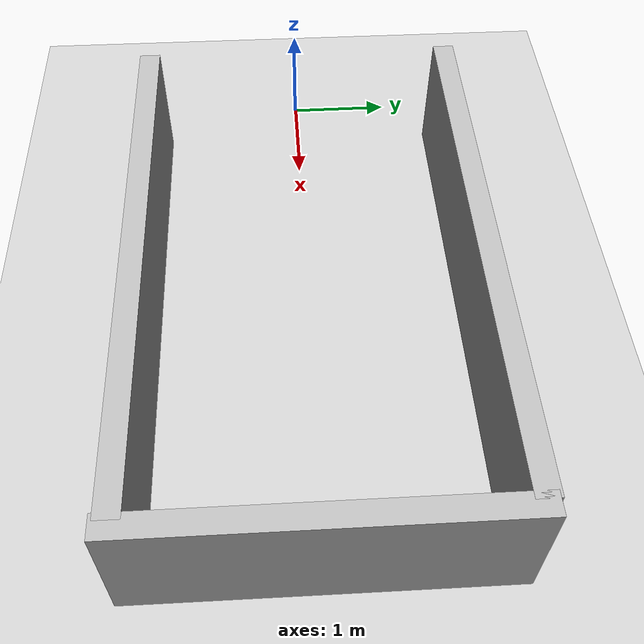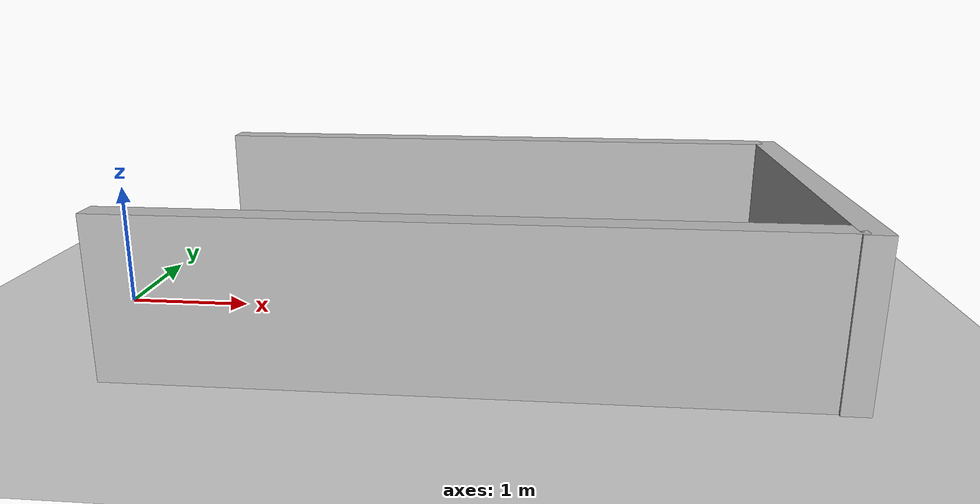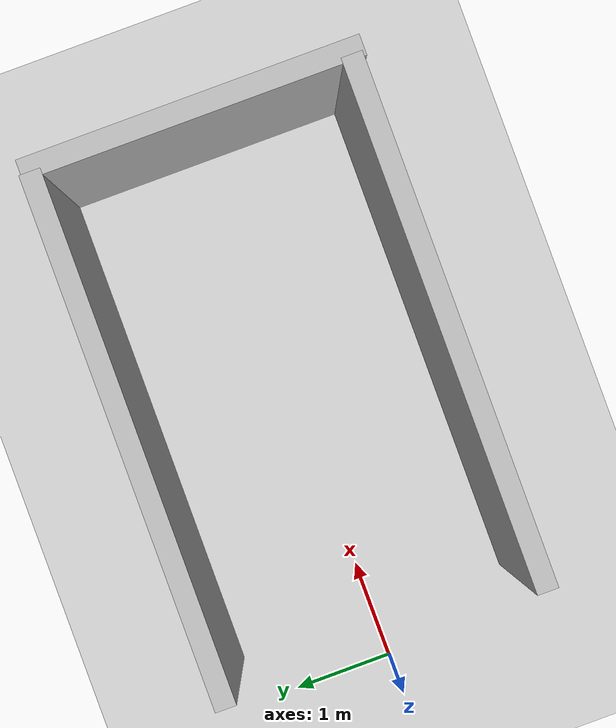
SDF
<?xml version="1.0"?>
<sdf version="1.6">
  <world name="v2-04g-r5-maneuver-s5135">
    <gravity>0 0 -9.81</gravity>
    <physics name="v2_deterministic" type="ode">
      <max_step_size>0.002</max_step_size>
      <real_time_update_rate>500</real_time_update_rate>
    </physics>
    <include>
      <uri>model://sun</uri>
    </include>
    <include>
      <uri>model://ground_plane</uri>
    </include>
    <model name="bay-left">
      <static>true</static>
      <pose>2.984309926 1.505758880 0.600000000 0 0 -0.001193643</pose>
      <link name="link">
        <collision name="collision">
          <geometry>
            <box>
              <size>5.000000 0.200000 1.200000</size>
            </box>
          </geometry>
        </collision>
        <visual name="visual">
          <geometry>
            <box>
              <size>5.000000 0.200000 1.200000</size>
            </box>
          </geometry>
        </visual>
      </link>
    </model>
    <model name="bay-right">
      <static>true</static>
      <pose>2.978519110 -1.490142126 0.600000000 0 0 -0.001128669</pose>
      <link name="link">
        <collision name="collision">
          <geometry>
            <box>
              <size>5.000000 0.200000 1.200000</size>
            </box>
          </geometry>
        </collision>
        <visual name="visual">
          <geometry>
            <box>
              <size>5.000000 0.200000 1.200000</size>
            </box>
          </geometry>
        </visual>
      </link>
    </model>
    <model name="bay-back">
      <static>true</static>
      <pose>5.521927656 -0.016369960 0.600000000 0 0 0.000334544</pose>
      <link name="link">
        <collision name="collision">
          <geometry>
            <box>
              <size>0.200000 3.200000 1.200000</size>
            </box>
          </geometry>
        </collision>
        <visual name="visual">
          <geometry>
            <box>
              <size>0.200000 3.200000 1.200000</size>
            </box>
          </geometry>
        </visual>
      </link>
    </model>
  </world>
</sdf>
